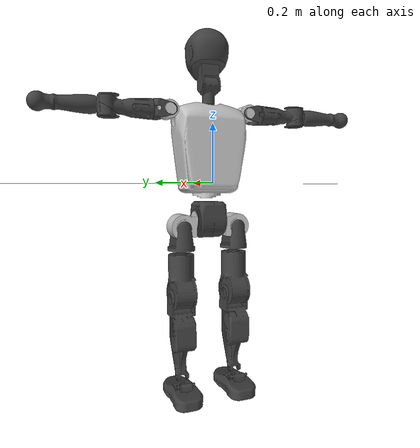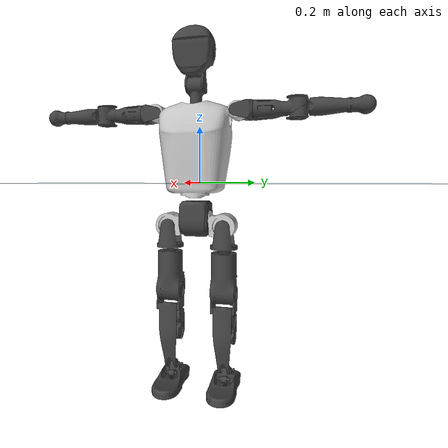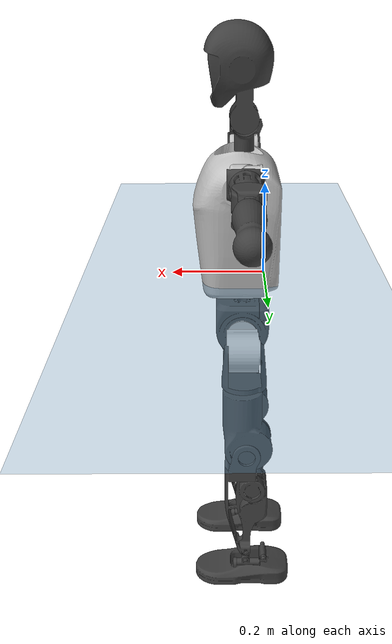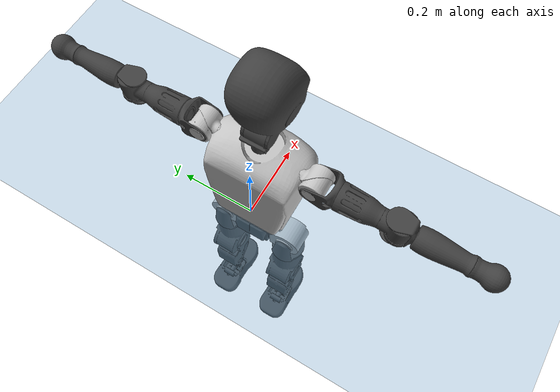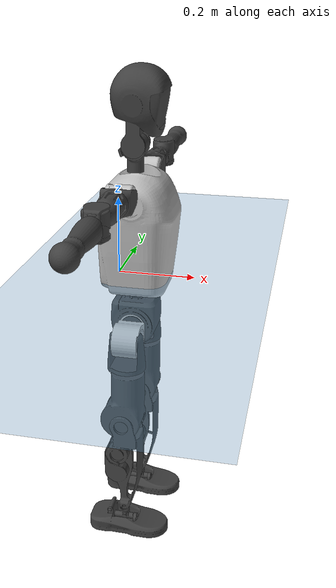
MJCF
<mujoco model="T1">
  <compiler angle="radian" assetdir="assets" balanceinertia="true" inertiafromgeom="false"/>

  <option timestep="0.005" density="1.2" viscosity="2e-05"/>

  <size nkey="1"/>

  <visual>
    <quality shadowsize="8192"/>
    <map shadowclip="0.5"/>
  </visual>

  <default>
    <default class="/">
      <joint armature="0.01" damping="0.01" frictionloss="0.1"/>
      <geom contype="0" conaffinity="0" group="1" solref="-1000 -80"/>
      <site size="0.01 0.005 0.005" group="5"/>
      <general forcelimited="true" biastype="affine" gainprm="25" biasprm="0 -25 -0.6"/>
      <default class="t1">
        <geom rgba="0.25 0.25 0.25 1"/>
        <default class="visual">
          <geom type="mesh" group="2"/>
        </default>
        <default class="collision">
          <geom group="3"/>
        </default>
        <default class="foot">
          <geom size="0.1115 0.05 0.015" type="box" condim="6" group="4" priority="1" solimp="0.015 1 0.015"/>
        </default>
        <default class="reward_collision_sphere">
          <geom group="5" rgba="1 0 0 1"/>
        </default>
      </default>
    </default>
  </default>

  <asset>
    <texture type="skybox" colorspace="auto" name="//unnamed_texture_0" builtin="gradient" rgb1="0.95 0.95 0.95" rgb2="0.95 0.95 0.95" width="100" height="600"/>
    <texture type="2d" colorspace="auto" name="texplane" builtin="checker" rgb1="0.345 0.575 0.748" rgb2="0.345 0.575 0.748" markrgb="1 1 1" width="512" height="512"/>
    <material name="MatPlane" class="/" texture="texplane" texuniform="true" texrepeat="2 2" specular="0.9"/>
    <mesh name="Trunk" class="/" file="Trunk.stl"/>
    <mesh name="H1" class="/" file="H1.stl"/>
    <mesh name="H2" class="/" file="H2.stl"/>
    <mesh name="AL1" class="/" file="AL1.stl"/>
    <mesh name="AL2" class="/" file="AL2.stl"/>
    <mesh name="AL3" class="/" file="AL3.stl"/>
    <mesh name="left_hand_link" class="/" file="left_hand_link.stl"/>
    <mesh name="AR1" class="/" file="AR1.stl"/>
    <mesh name="AR2" class="/" file="AR2.stl"/>
    <mesh name="AR3" class="/" file="AR3.stl"/>
    <mesh name="right_hand_link" class="/" file="right_hand_link.stl"/>
    <mesh name="Waist" class="/" file="Waist.stl"/>
    <mesh name="Hip_Pitch_Left" class="/" file="Hip_Pitch_Left.stl"/>
    <mesh name="Hip_Roll_Left" class="/" file="Hip_Roll_Left.stl"/>
    <mesh name="Hip_Yaw_Left" class="/" file="Hip_Yaw_Left.stl"/>
    <mesh name="Shank_Left" class="/" file="Shank_Left.stl"/>
    <mesh name="Ankle_Cross_Left" class="/" file="Ankle_Cross_Left.stl"/>
    <mesh name="left_foot_link" class="/" file="left_foot_link.stl"/>
    <mesh name="Hip_Pitch_Right" class="/" file="Hip_Pitch_Right.stl"/>
    <mesh name="Hip_Roll_Right" class="/" file="Hip_Roll_Right.stl"/>
    <mesh name="Hip_Yaw_Right" class="/" file="Hip_Yaw_Right.stl"/>
    <mesh name="Shank_Right" class="/" file="Shank_Right.stl"/>
    <mesh name="Ankle_Cross_Right" class="/" file="Ankle_Cross_Right.stl"/>
    <mesh name="right_foot_link" class="/" file="right_foot_link.stl"/>
  </asset>

  <worldbody>
    <geom name="floor" class="/" size="100 100 0.125" type="plane" group="0" material="MatPlane"/>
    <light name="toplight_shadow" class="/" pos="0 0 5" dir="0.0990148 0.0990148 -0.990148" type="directional" ambient="0.04 0.04 0.04" diffuse="0.55 0.55 0.55" specular="0.12 0.12 0.12"/>
    <light name="toplight_fill" class="/" pos="0 0 5" dir="0.0990148 0.0990148 -0.990148" type="directional" castshadow="false" ambient="0.04 0.04 0.04" diffuse="0.3 0.3 0.3" specular="0.08 0.08 0.08"/>
    <body name="trunk" childclass="t1" pos="-0.00018297 -0.000713212 -0.000960921" quat="1 0.000610762 0.000225515 8.06245e-05">
      <inertial pos="0.0406976 -0.000610091 0.11773" quat="0.999958 0.000414249 -0.00916854 0.000509333" mass="9.2844" diaginertia="0.0209116 0.0511184 0.0973119"/>
      <joint name="//unnamed_joint_0" type="free" armature="0" damping="0" frictionloss="0"/>
      <geom name="//unnamed_geom_1" class="visual" rgba="0.76 0.76 0.76 1" mesh="Trunk"/>
      <geom name="//unnamed_geom_2" class="collision" size="0.0697114 0.0929486 0.139423" pos="0.0446526 0 0.134186" type="box"/>
      <geom name="//unnamed_geom_3" class="reward_collision_sphere" size="0.106891" pos="0.0446526 0 0.111822"/>
      <geom name="//unnamed_geom_4" class="reward_collision_sphere" size="0.0139423" pos="0.0446526 0.0787126 0"/>
      <geom name="//unnamed_geom_5" class="reward_collision_sphere" size="0.0139423" pos="0.0446526 -0.0787126 0"/>
      <geom name="//unnamed_geom_6" class="reward_collision_sphere" size="0.0139423" pos="0.0446526 0.0990853 0.201279"/>
      <geom name="//unnamed_geom_7" class="reward_collision_sphere" size="0.0139423" pos="0.0446526 -0.0990853 0.201279"/>
      <site name="imu" pos="-0.00441599 -0.00150427 -0.000490805" size="0.00929486"/>
      <camera name="track" pos="0 -1.85206 0" quat="0.707107 0.707107 0 0" mode="trackcom"/>
      <camera name="ego_camera" pos="0.0907935 0 0.469651" quat="-0.5 -0.5 0.5 0.5"/>
      <body name="H1" pos="0.0453373 -0.000266202 0.271194" quat="1 -0.000170987 -0.000362834 2.95983e-05">
        <inertial pos="-0.00122508 -0.00244936 0.0641934" quat="0.764188 -0.0135673 0.00173204 0.644848" mass="0.355133" diaginertia="5.47964e-05 0.000153841 0.000265414"/>
        <joint name="AAHead_yaw" pos="0 0 0" axis="0.000168378 0.00013991 1" range="-1.60069 1.57387" armature="0.00935908" damping="0.01483" frictionloss="0.0894616"/>
        <geom name="//unnamed_geom_8" class="visual" mesh="H1"/>
        <body name="H2" pos="0.000238477 -0.000245105 0.0688167" quat="1 0.000236889 0.000254624 0.000504412">
          <inertial pos="0.00535903 0.00124502 0.110137" quat="0.98848 0.105895 -0.0744125 -0.0784599" mass="0.50031" diaginertia="0.000468683 0.00131836 0.00301911"/>
          <joint name="Head_pitch" pos="0 0 0" axis="0.00411968 -0.99999 -0.00190276" range="-1.2149 0.369739" armature="0.00945359" damping="0.0119992" frictionloss="0.0982951"/>
          <geom name="//unnamed_geom_9" class="visual" mesh="H2"/>
          <geom name="//unnamed_geom_10" class="collision" size="0.0743588" pos="0.00744209 0 0.123004"/>
          <geom name="//unnamed_geom_11" class="reward_collision_sphere" size="0.0836537" pos="0.0148842 0 0.111822"/>
        </body>
      </body>
      <body name="AL1" pos="0.044921 0.0985672 0.244518" quat="1 -5.91304e-05 0.000695068 -0.000230355">
        <inertial pos="-0.00196287 0.0422973 0.000964475" quat="0.503277 0.496159 -0.5037 0.496815" mass="0.430169" diaginertia="0.000314693 0.000906944 0.000515571"/>
        <joint name="Left_Shoulder_Pitch" pos="0 0 0" axis="0.0014314 0.999998 -0.00105128" range="-3.31438 1.21982" armature="0.00921877" damping="0.00302895" frictionloss="0.0967303"/>
        <geom name="//unnamed_geom_12" class="visual" rgba="0.76 0.76 0.76 1" mesh="AL1"/>
        <body name="AL2" pos="0.00143455 0.0436162 -0.000696933" quat="1 -0.000109469 0.000245126 -0.00015204">
          <inertial pos="0.00331677 0.035377 -0.000726101" quat="0.488851 0.512208 -0.490332 0.508174" mass="0.128197" diaginertia="9.15553e-05 0.000237339 0.000308567"/>
          <joint name="Left_Shoulder_Roll" pos="0 0 0" axis="-0.999984 0.00117414 -0.00559061" range="-1.57181 1.73713" armature="0.00957194" damping="0.00579143" frictionloss="0.0886026"/>
          <geom name="//unnamed_geom_13" class="visual" mesh="AL2"/>
          <body name="AL3" pos="-0.000311657 0.057061 -0.000181652" quat="1 0.000206645 -0.000131652 0.000306055">
            <inertial pos="-0.000690991 0.0789707 0.000185981" quat="0.706395 0.707818 -1.08274e-05 -6.91784e-05" mass="0.822421" diaginertia="0.00290876 0.00871587 0.00110016"/>
            <joint name="Left_Elbow_Pitch" pos="0 0 0" axis="0.00222023 -0.999996 0.00163226" range="-2.26479 2.26968" armature="0.00925447" damping="0.00965984" frictionloss="0.0890114"/>
            <geom name="//unnamed_geom_14" class="visual" mesh="AL3"/>
            <geom name="//unnamed_geom_15" class="collision" size="0.0278846 0.0697114" pos="0 0.0463015 0" quat="0.707105 0.707108 0 0" type="cylinder"/>
            <geom name="//unnamed_geom_16" class="reward_collision_sphere" size="0.0334615"/>
            <body name="left_hand_link" pos="0.00111317 0.135454 0.00224973" quat="1 -0.000300818 -0.00016611 -0.000141228">
              <inertial pos="-0.000210591 0.100675 6.43364e-06" quat="0.708209 0.706001 0.00128618 0.000489563" mass="0.269798" diaginertia="0.00186507 0.00558038 0.000381467"/>
              <joint name="Left_Elbow_Yaw" pos="0 0 0" axis="-0.00238601 0.00590453 0.99998" range="-2.45105 -0.00537625" armature="0.00946601" damping="0.0107748" frictionloss="0.089417"/>
              <geom name="//unnamed_geom_17" class="visual" mesh="left_hand_link"/>
              <geom name="//unnamed_geom_18" class="collision" size="0.0278846 0.08133" pos="0 0.120384 0" quat="0.707105 0.707108 0 0" type="cylinder"/>
              <geom name="//unnamed_geom_19" class="reward_collision_sphere" size="0.0464743"/>
              <geom name="//unnamed_geom_20" class="reward_collision_sphere" size="0.032532" pos="0 0.101863 0"/>
              <geom name="//unnamed_geom_21" class="reward_collision_sphere" size="0.032532" pos="0 0.199097 0"/>
            </body>
          </body>
        </body>
      </body>
      <body name="AR1" pos="0.0421689 -0.0970228 0.245071" quat="1 3.35591e-06 0.000350853 -0.000349065">
        <inertial pos="-0.000503455 -0.0409105 3.31766e-05" quat="0.503794 0.49968 -0.502208 0.494266" mass="0.430577" diaginertia="0.000314374 0.000889862 0.000515789"/>
        <joint name="Right_Shoulder_Pitch" pos="0 0 0" axis="0.00102407 -0.999999 0.000503616" range="-1.22568 3.29516" armature="0.00903564" damping="0.00668232" frictionloss="0.094624"/>
        <geom name="//unnamed_geom_22" class="visual" rgba="0.76 0.76 0.76 1" mesh="AR1"/>
        <body name="AR2" pos="-0.000689319 -0.0436772 -0.00123166" quat="1 -0.000131439 0.000223266 4.49223e-05">
          <inertial pos="0.00367383 -0.0352357 -9.71678e-05" quat="0.511046 0.488093 -0.512896 0.487374" mass="0.127664" diaginertia="9.29053e-05 0.000233353 0.000306708"/>
          <joint name="Right_Shoulder_Roll" pos="0 0 0" axis="-0.999988 0.00260236 -0.00405542" range="-1.74244 1.57648" armature="0.00929022" damping="0.00125401" frictionloss="0.0948052"/>
          <geom name="//unnamed_geom_23" class="visual" mesh="AR2"/>
          <body name="AR3" pos="-0.000478597 -0.0560153 0.000348506" quat="1 -4.01493e-05 -2.50131e-05 3.35141e-05">
            <inertial pos="-0.00159408 -0.0793718 0.000190641" quat="0.706534 0.707677 -8.8633e-05 0.0015689" mass="0.83557" diaginertia="0.00298792 0.00878429 0.00108644"/>
            <joint name="Right_Elbow_Pitch" pos="0 0 0" axis="-0.00397318 0.999987 -0.00317059" range="-2.26952 2.28891" armature="0.00936411" damping="0.00981772" frictionloss="0.0914922"/>
            <geom name="//unnamed_geom_24" class="visual" mesh="AR3"/>
            <geom name="//unnamed_geom_25" class="collision" size="0.0278846 0.0697114" pos="0 -0.0463015 0" quat="0.707105 0.707108 0 0" type="cylinder"/>
            <geom name="//unnamed_geom_26" class="reward_collision_sphere" size="0.0334615"/>
            <body name="right_hand_link" pos="-0.000527889 -0.135848 0.000612268" quat="1 -6.80948e-05 3.14678e-05 -4.86481e-05">
              <inertial pos="0.000353788 -0.101644 0.00112526" quat="0.706044 0.708167 0.00154065 -0.000102221" mass="0.266089" diaginertia="0.00186923 0.00565736 0.000375784"/>
              <joint name="Right_Elbow_Yaw" pos="0 0 0" axis="-0.00109642 -0.00161728 0.999998" stiffness="0.00336706" range="-0.0043122 2.43939" armature="0.00940368" damping="0.0100773" frictionloss="0.0927413"/>
              <geom name="//unnamed_geom_27" class="visual" mesh="right_hand_link"/>
              <geom name="//unnamed_geom_28" class="collision" size="0.0278846 0.08133" pos="0 -0.120384 0" quat="0.707105 0.707108 0 0" type="cylinder"/>
              <geom name="//unnamed_geom_29" class="reward_collision_sphere" size="0.0464743"/>
              <geom name="//unnamed_geom_30" class="reward_collision_sphere" size="0.032532" pos="0 -0.101863 0"/>
              <geom name="//unnamed_geom_31" class="reward_collision_sphere" size="0.032532" pos="0 -0.199097 0"/>
            </body>
          </body>
        </body>
      </body>
      <body name="Waist" pos="0.0463234 -0.000587655 -0.129819" quat="1 -8.99892e-05 -0.000128845 4.58026e-06">
        <inertial pos="0.000597603 -0.000953016 0.00735033" quat="0.983663 0.000383205 -0.179974 0.00399721" mass="2.08452" diaginertia="0.00124297 0.00365687 0.008416"/>
        <joint name="Waist" pos="0 0 0" axis="0.000416741 0.000519769 1" stiffness="0.00116469" range="-1.56219 1.55177" armature="0.00927092" damping="0" frictionloss="0.0928954"/>
        <geom name="//unnamed_geom_32" class="visual" mesh="Waist"/>
        <body name="Hip_Pitch_Left" pos="0.000737921 0.0992271 7.87552e-05" quat="1 -4.64717e-05 0.000277008 -0.000106983">
          <inertial pos="0.00140258 -0.00707856 -0.0217247" quat="0.975077 0.221369 0.0147424 0.00201888" mass="0.827136" diaginertia="0.000408055 0.000991152 0.0022036"/>
          <joint name="Left_Hip_Pitch" pos="0 0 0" axis="0.00218569 0.999981 0.00570245" range="-1.79946 1.56812" armature="0.00928751" damping="0.00966031" frictionloss="0.0920062"/>
          <geom name="//unnamed_geom_33" class="visual" rgba="0.76 0.76 0.76 1" mesh="Hip_Pitch_Left"/>
          <body name="Hip_Roll_Left" pos="-0.000992304 0.000706623 -0.0235904" quat="1 8.55348e-05 4.72177e-05 -1.66106e-05">
            <inertial pos="0.00162174 -0.000455586 -0.0603291" quat="0.705715 -0.00796513 -0.00960562 0.708386" mass="0.306981" diaginertia="0.000393848 0.00101662 0.000892089"/>
            <joint name="Left_Hip_Roll" pos="0 0 0" axis="-0.999994 0.00175431 -0.00308618" range="-1.57796 0.203929" armature="0.00921953" damping="0.00688555" frictionloss="0.0951312"/>
            <geom name="//unnamed_geom_34" class="visual" mesh="Hip_Roll_Left"/>
            <geom name="//unnamed_geom_35" class="reward_collision_sphere" size="0.0511217"/>
            <body name="Hip_Yaw_Left" pos="0.000788094 0.000360997 -0.0910635" quat="1 6.30249e-07 -1.67931e-05 -2.92278e-05">
              <inertial pos="-0.00484725 -0.000836627 -0.100674" quat="0.696681 -0.0367066 -0.0317949 0.715736" mass="1.74938" diaginertia="0.00597803 0.0171248 0.00453565"/>
              <joint name="Left_Hip_Yaw" pos="0 0 0" axis="0.000513033 -0.00315703 -0.999995" range="-1.00481 1.00028" armature="0.00944574" damping="0.0126657" frictionloss="0.0907143"/>
              <geom name="//unnamed_geom_36" class="visual" mesh="Hip_Yaw_Left"/>
              <geom name="//unnamed_geom_37" class="collision" size="0.0464743 0.0743588" type="cylinder"/>
              <body name="Shank_Left" pos="-0.00938545 0.000759562 -0.150408" quat="1 -0.000427744 0.000289572 -0.000308621">
                <inertial pos="-0.00548573 -0.000984012 -0.138349" quat="0.9976 -0.000297952 -0.0256061 0.0643302" mass="1.37446" diaginertia="0.00782846 0.0232419 0.00320038"/>
                <joint name="Left_Knee_Pitch" pos="0 0 0" axis="0.00172187 0.999998 -0.00025415" range="-0.00133367 2.34154" armature="0.00908329" damping="0.00921603" frictionloss="0.0898062"/>
                <geom name="//unnamed_geom_38" class="visual" mesh="Shank_Left"/>
                <geom name="//unnamed_geom_39" class="collision" size="0.0464743 0.0697114" pos="0 0 -0.134186" type="cylinder"/>
                <geom name="//unnamed_geom_40" class="reward_collision_sphere" size="0.0604166"/>
                <body name="Ankle_Cross_Left" pos="-0.0013713 0.000488916 -0.313764" quat="1 -1.39479e-05 1.09245e-05 1.20442e-06">
                  <inertial pos="-0.00230048 3.91291e-05 -0.00914368" quat="0.438386 0.5515 0.553953 0.443624" mass="0.0580452" diaginertia="6.60172e-06 1.7309e-05 1.97732e-05"/>
                  <joint name="Left_Ankle_Pitch" pos="0 0 0" axis="-0.00294612 0.999991 0.00309163" range="-0.864537 0.340701" armature="0.00944155" damping="0.00556632" frictionloss="0.0931446"/>
                  <geom name="//unnamed_geom_41" class="visual" mesh="Ankle_Cross_Left"/>
                  <body name="left_foot_link" pos="-0.00087478 -0.000254606 -0.0139677" quat="1 -0.000332594 -0.000194276 -0.00016911">
                    <inertial pos="-0.000154176 0.000162738 -0.00872617" quat="0.000358726 0.620933 0.000402353 0.783864" mass="0.559101" diaginertia="0.000623363 0.00163663 0.0038963"/>
                    <joint name="Left_Ankle_Roll" pos="0 0 0" axis="-0.999997 -0.000379357 0.00224851" range="-0.431284 0.421697" armature="0.00925671" damping="0.0150038" frictionloss="0.0931158"/>
                    <geom name="//unnamed_geom_42" class="visual" mesh="left_foot_link"/>
                    <geom name="left_foot" class="foot" size="0.105878 0.0503687 0.0137848" pos="0.00744209 0 -0.0167733"/>
                    <geom name="//unnamed_geom_44" class="reward_collision_sphere" size="0.0483332" pos="0.00744209 0 -0.0167733"/>
                    <geom name="//unnamed_geom_45" class="reward_collision_sphere" size="0.0278846" pos="0.0706999 -0.0212987 -0.0167733"/>
                    <geom name="//unnamed_geom_46" class="reward_collision_sphere" size="0.0278846" pos="-0.0520947 -0.0212987 -0.0167733"/>
                    <site name="left_foot" class="foot" pos="0.00744209 0 -0.0167733" size="0.00929486"/>
                  </body>
                </body>
              </body>
            </body>
          </body>
        </body>
        <body name="Hip_Pitch_Right" pos="-0.000626785 -0.0970061 0.000328305" quat="1 -7.57257e-05 -4.60806e-05 5.96822e-05">
          <inertial pos="-1.67519e-05 0.00575908 -0.0199687" quat="0.973778 -0.227138 0.0127987 -0.000650793" mass="0.818932" diaginertia="0.000414171 0.000995126 0.00215719"/>
          <joint name="Right_Hip_Pitch" pos="0 0 0" axis="0.000462468 -1 -0.000368545" range="-1.58681 1.79074" armature="0.00926788" damping="0.00314216" frictionloss="0.0981524"/>
          <geom name="//unnamed_geom_47" class="visual" rgba="0.76 0.76 0.76 1" mesh="Hip_Pitch_Right"/>
          <body name="Hip_Roll_Right" pos="-0.00114047 -0.000312328 -0.0223768" quat="1 4.04829e-06 7.83138e-06 -1.69042e-05">
            <inertial pos="0.00130459 -0.000300894 -0.060983" quat="0.707079 -0.00559995 -0.00578597 0.707089" mass="0.309142" diaginertia="0.000390242 0.00102499 0.000894991"/>
            <joint name="Right_Hip_Roll" pos="0 0 0" axis="-0.999999 -0.000473566 0.00095666" range="-0.215186 1.5848" armature="0.00940345" damping="0.0126334" frictionloss="0.0932616"/>
            <geom name="//unnamed_geom_48" class="visual" mesh="Hip_Roll_Right"/>
            <geom name="//unnamed_geom_49" class="reward_collision_sphere" size="0.0511217"/>
            <body name="Hip_Yaw_Right" pos="0.000341216 0.000155321 -0.0916154" quat="1 3.17813e-05 4.62409e-05 -4.2748e-05">
              <inertial pos="-0.00514028 0.00100506 -0.0994735" quat="0.714183 -0.0301024 -0.0332626 0.69852" mass="1.72591" diaginertia="0.0058206 0.01686 0.00449876"/>
              <joint name="Right_Hip_Yaw" pos="0 0 0" axis="0.000829972 -0.00113267 -0.999999" stiffness="0.000759433" range="-0.99661 1.00449" armature="0.00926111" damping="0.0085022" frictionloss="0.0926538"/>
              <geom name="//unnamed_geom_50" class="visual" mesh="Hip_Yaw_Right"/>
              <geom name="//unnamed_geom_51" class="collision" size="0.0464743 0.0743588" type="cylinder"/>
              <body name="Shank_Right" pos="-0.00996675 -0.000628536 -0.148984" quat="1 1.19268e-05 2.83835e-05 -9.95597e-06">
                <inertial pos="-0.00632805 -0.000800771 -0.136573" quat="0.99946 -0.000961926 -0.0212529 -0.0250572" mass="1.40677" diaginertia="0.00788548 0.0233746 0.0033808"/>
                <joint name="Right_Knee_Pitch" pos="0 0 0" axis="0.00728893 -0.999969 -0.00290404" range="-2.33753 -0.0156982" armature="0.0093453" damping="0.00630735" frictionloss="0.095498"/>
                <geom name="//unnamed_geom_52" class="visual" mesh="Shank_Right"/>
                <geom name="//unnamed_geom_53" class="collision" size="0.0464743 0.0697114" pos="0 0 -0.134186" type="cylinder"/>
                <geom name="//unnamed_geom_54" class="reward_collision_sphere" size="0.0604166"/>
                <body name="Ankle_Cross_Right" pos="0.00141665 0.000515102 -0.313584" quat="1 0.000142628 -0.000320041 -6.19438e-05">
                  <inertial pos="-0.00241993 0.0011958 -0.00902595" quat="0.439261 0.551933 0.551384 0.445415" mass="0.0593779" diaginertia="6.64822e-06 1.73964e-05 1.98744e-05"/>
                  <joint name="Right_Ankle_Pitch" pos="0 0 0" axis="-0.000757104 -1 -0.000558468" range="-0.318747 0.853098" armature="0.00904487" damping="0.00554208" frictionloss="0.0935635"/>
                  <geom name="//unnamed_geom_55" class="visual" mesh="Ankle_Cross_Right"/>
                  <body name="right_foot_link" pos="0.000701083 -0.000932052 -0.0138905" quat="1 -0.000106187 3.55921e-05 -0.000121923">
                    <inertial pos="-3.60199e-05 0.000717816 -0.00891183" quat="0.00180804 0.620615 0.00182653 0.784111" mass="0.546062" diaginertia="0.000614588 0.00163681 0.00382716"/>
                    <joint name="Right_Ankle_Roll" pos="0 0 0" axis="-0.999999 0.000103738 0.00158398" range="-0.437614 0.432587" armature="0.00958563" damping="0.013036" frictionloss="0.10023"/>
                    <geom name="//unnamed_geom_56" class="visual" mesh="right_foot_link"/>
                    <geom name="right_foot" class="foot" size="0.10136 0.0427562 0.0149084" pos="0.00744209 0 -0.0167733"/>
                    <geom name="//unnamed_geom_58" class="reward_collision_sphere" size="0.0371794"/>
                    <geom name="//unnamed_geom_59" class="reward_collision_sphere" size="0.0278846" pos="0.00744209 0 -0.0167733"/>
                    <geom name="//unnamed_geom_60" class="reward_collision_sphere" size="0.0278846" pos="0.0706999 0.0212987 -0.0167733"/>
                    <geom name="//unnamed_geom_61" class="reward_collision_sphere" size="0.0278846" pos="-0.0520947 0.0212987 -0.0167733"/>
                    <site name="right_foot" class="foot" pos="0.00744209 0 -0.0167733" size="0.00929486"/>
                  </body>
                </body>
              </body>
            </body>
          </body>
        </body>
      </body>
    </body>
  </worldbody>

  <contact>
    <pair class="/" geom1="floor" geom2="left_foot" name="//unnamed_contact_0"/>
    <pair class="/" geom1="floor" geom2="right_foot" name="//unnamed_contact_1"/>
  </contact>

  <actuator>
    <general name="AAHead_yaw" class="/" joint="AAHead_yaw" forcerange="-6.50359 6.50359" gainprm="23.0285" biasprm="0 -23.0285 -0.548704"/>
    <general name="Head_pitch" class="/" joint="Head_pitch" forcerange="-6.2815 6.2815" gainprm="23.0285" biasprm="0 -23.0285 -0.548704"/>
    <general name="Left_Shoulder_Pitch" class="/" joint="Left_Shoulder_Pitch" forcerange="-17.1962 17.1962" gainprm="23.0285" biasprm="0 -23.0285 -0.548704"/>
    <general name="Left_Shoulder_Roll" class="/" joint="Left_Shoulder_Roll" forcerange="-16.6559 16.6559" gainprm="23.0285" biasprm="0 -23.0285 -0.548704"/>
    <general name="Left_Elbow_Pitch" class="/" joint="Left_Elbow_Pitch" forcerange="-16.6076 16.6076" gainprm="23.0285" biasprm="0 -23.0285 -0.548704"/>
    <general name="Left_Elbow_Yaw" class="/" joint="Left_Elbow_Yaw" forcerange="-16.8766 16.8766" gainprm="23.0285" biasprm="0 -23.0285 -0.548704"/>
    <general name="Right_Shoulder_Pitch" class="/" joint="Right_Shoulder_Pitch" forcerange="-17.0229 17.0229" gainprm="23.0285" biasprm="0 -23.0285 -0.548704"/>
    <general name="Right_Shoulder_Roll" class="/" joint="Right_Shoulder_Roll" forcerange="-16.219 16.219" gainprm="23.0285" biasprm="0 -23.0285 -0.548704"/>
    <general name="Right_Elbow_Pitch" class="/" joint="Right_Elbow_Pitch" forcerange="-16.7607 16.7607" gainprm="23.0285" biasprm="0 -23.0285 -0.548704"/>
    <general name="Right_Elbow_Yaw" class="/" joint="Right_Elbow_Yaw" forcerange="-16.5293 16.5293" gainprm="23.0285" biasprm="0 -23.0285 -0.548704"/>
    <general name="Waist" class="/" joint="Waist" forcerange="-28.1687 28.1687" gainprm="23.0285" biasprm="0 -23.0285 -0.548704"/>
    <general name="Left_Hip_Pitch" class="/" joint="Left_Hip_Pitch" forcerange="-41.5168 41.5168" gainprm="23.0285" biasprm="0 -23.0285 -0.548704"/>
    <general name="Left_Hip_Roll" class="/" joint="Left_Hip_Roll" forcerange="-29.0594 29.0594" gainprm="23.0285" biasprm="0 -23.0285 -0.548704"/>
    <general name="Left_Hip_Yaw" class="/" joint="Left_Hip_Yaw" forcerange="-28.7196 28.7196" gainprm="23.0285" biasprm="0 -23.0285 -0.548704"/>
    <general name="Left_Knee_Pitch" class="/" joint="Left_Knee_Pitch" forcerange="-57.2719 57.2719" gainprm="23.0285" biasprm="0 -23.0285 -0.548704"/>
    <general name="Left_Ankle_Pitch" class="/" joint="Left_Ankle_Pitch" forcerange="-19.1746 19.1746" gainprm="23.0285" biasprm="0 -23.0285 -0.548704"/>
    <general name="Left_Ankle_Roll" class="/" joint="Left_Ankle_Roll" forcerange="-14.4295 14.4295" gainprm="23.0285" biasprm="0 -23.0285 -0.548704"/>
    <general name="Right_Hip_Pitch" class="/" joint="Right_Hip_Pitch" forcerange="-41.156 41.156" gainprm="23.0285" biasprm="0 -23.0285 -0.548704"/>
    <general name="Right_Hip_Roll" class="/" joint="Right_Hip_Roll" forcerange="-27.4289 27.4289" gainprm="23.0285" biasprm="0 -23.0285 -0.548704"/>
    <general name="Right_Hip_Yaw" class="/" joint="Right_Hip_Yaw" forcerange="-27.1689 27.1689" gainprm="23.0285" biasprm="0 -23.0285 -0.548704"/>
    <general name="Right_Knee_Pitch" class="/" joint="Right_Knee_Pitch" forcerange="-56.4216 56.4216" gainprm="23.0285" biasprm="0 -23.0285 -0.548704"/>
    <general name="Right_Ankle_Pitch" class="/" joint="Right_Ankle_Pitch" forcerange="-18.6374 18.6374" gainprm="23.0285" biasprm="0 -23.0285 -0.548704"/>
    <general name="Right_Ankle_Roll" class="/" joint="Right_Ankle_Roll" forcerange="-13.974 13.974" gainprm="23.0285" biasprm="0 -23.0285 -0.548704"/>
  </actuator>

  <sensor>
    <gyro site="imu" name="imu_angular_velocity"/>
    <velocimeter site="imu" name="imu_linear_velocity"/>
    <framelinvel objtype="site" objname="left_foot" name="left_foot_global_linear_velocity"/>
    <framelinvel objtype="site" objname="right_foot" name="right_foot_global_linear_velocity"/>
  </sensor>

  <keyframe>
    <key name="home" qpos="0 0 0.6385 1 0 0 0 0 0 0 1.4 0 -0.4 0 -1.4 0 0.4 0 -0.4 0 0 0.8 -0.4 0 0.4 0 0 -0.8 0.4 0"/>
  </keyframe>
</mujoco>
